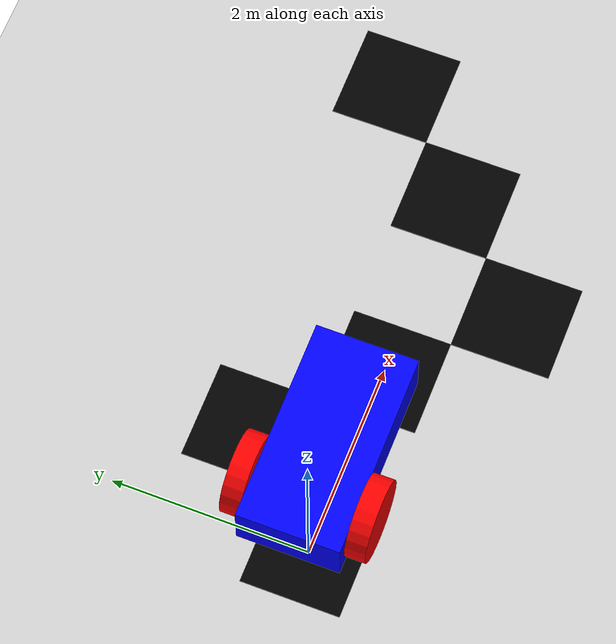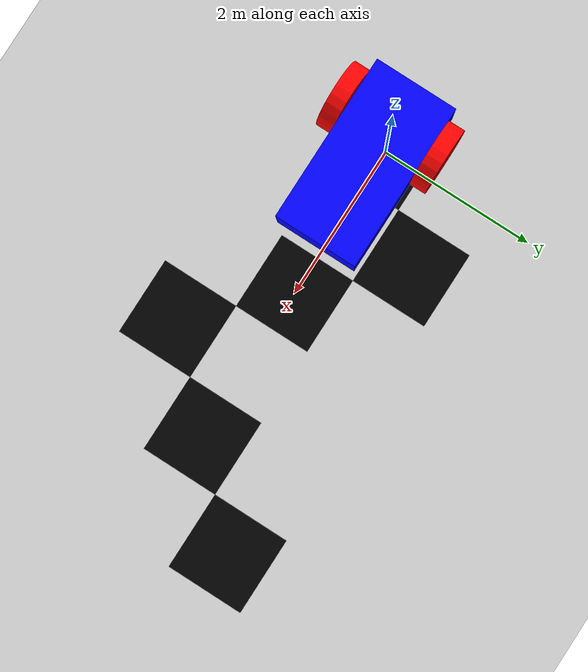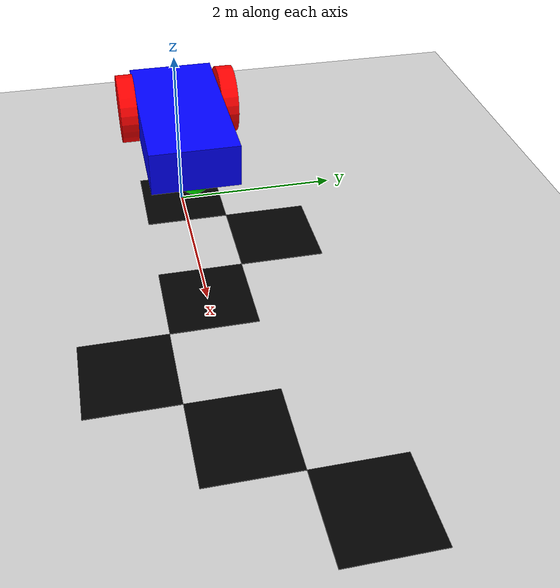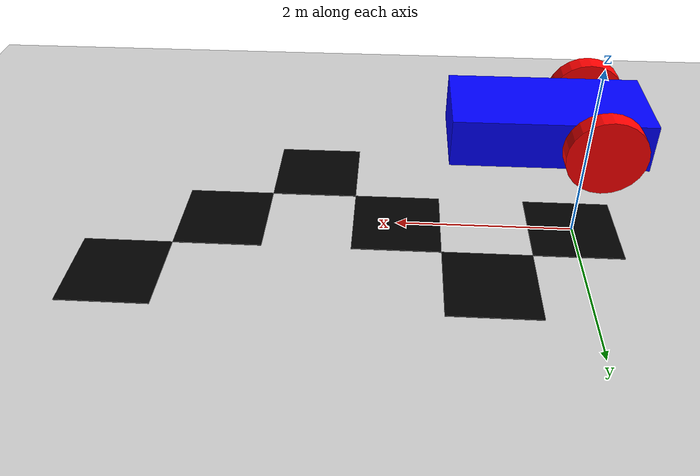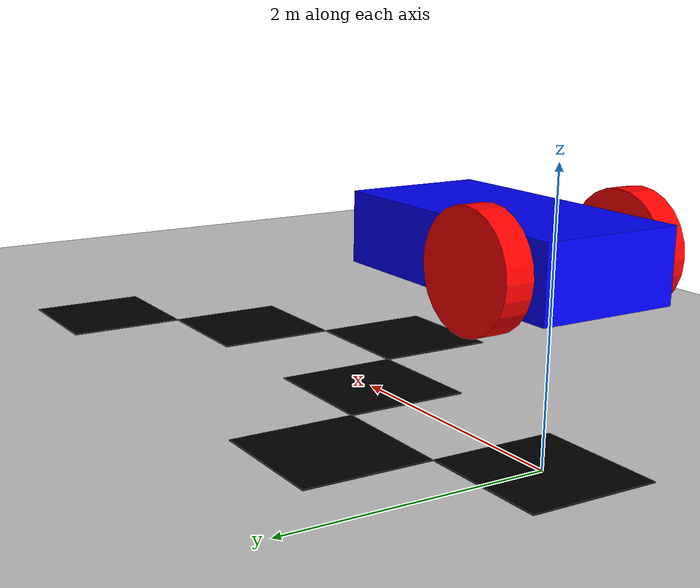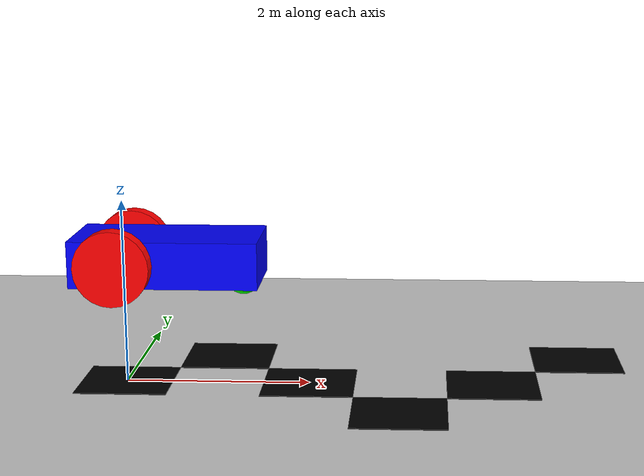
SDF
<?xml version="1.0" ?>
<sdf version="1.8">
  <world name="sensor_world">
    <physics name="1ms" type="ignored">
      <max_step_size>0.001</max_step_size>
      <real_time_factor>1.0</real_time_factor>
    </physics>
    <plugin filename="ignition-gazebo-physics-system" name="ignition::gazebo::systems::Physics">
    </plugin>
    <plugin filename="ignition-gazebo-user-commands-system" name="ignition::gazebo::systems::UserCommands">
    </plugin>
    <plugin filename="ignition-gazebo-scene-broadcaster-system" name="ignition::gazebo::systems::SceneBroadcaster">
    </plugin>
    <plugin filename="ignition-gazebo-imu-system" name="ignition::gazebo::systems::Imu">
    </plugin>
    <plugin filename="ignition-gazebo-sensors-system" name="ignition::gazebo::systems::Sensors">
      <render_engine>ogre2</render_engine>
    </plugin>
    <plugin filename="ignition-gazebo-contact-system" name="ignition::gazebo::systems::Contact">
    </plugin>

    <light type="directional" name="sun">
      <cast_shadows>true</cast_shadows>
      <pose>0 0 10 0 0 0</pose>
      <diffuse>0.8 0.8 0.8 1</diffuse>
      <specular>0.2 0.2 0.2 1</specular>
      <attenuation>
        <range>1000</range>
        <constant>0.9</constant>
        <linear>0.01</linear>
        <quadratic>0.001</quadratic>
      </attenuation>
      <direction>-0.5 0.1 -0.9</direction>
    </light>

    <model name="ground_plane">
      <static>true</static>
      <link name="link">
        <collision name="collision">
          <geometry>
            <plane>
              <normal>0 0 1</normal>
            </plane>
          </geometry>
        </collision>
        <visual name="visual">
          <geometry>
            <plane>
              <normal>0 0 1</normal>
              <size>100 100</size>
            </plane>
          </geometry>
          <material>
            <ambient>0.8 0.8 0.8 1</ambient>
            <diffuse>0.8 0.8 0.8 1</diffuse>
            <specular>0.8 0.8 0.8 1</specular>
          </material>
        </visual>
      </link>
    </model>

    <model name='vehicle_blue' canonical_link='chassis'>
      <pose relative_to='world'>0 0 1 0 0 0</pose>

      <frame name="lidar_frame" attached_to='chassis'>
        <pose>0.8 0 0.5 0 0 0</pose>
      </frame>

      <link name='chassis'>
        <pose relative_to='__model__'>0.5 0 0.4 0 0 0</pose>
        <inertial>
          <mass>1.14395</mass>
          <inertia>
            <ixx>0.126164</ixx>
            <ixy>0</ixy>
            <ixz>0</ixz>
            <iyy>0.416519</iyy>
            <iyz>0</iyz>
            <izz>0.481014</izz>
          </inertia>
        </inertial>
        <visual name='visual'>
          <geometry>
            <box>
              <size>2.0 1.0 0.5</size>
            </box>
          </geometry>
          <material>
            <ambient>0.0 0.0 1.0 1</ambient>
            <diffuse>0.0 0.0 1.0 1</diffuse>
            <specular>0.0 0.0 1.0 1</specular>
          </material>
        </visual>
        <collision name='collision'>
          <geometry>
            <box>
              <size>2.0 1.0 0.5</size>
            </box>
          </geometry>
        </collision>
        <sensor name="camera" type="camera">
          <pose>0 0 0.1 0 0 0</pose>
          <camera>
            <horizontal_fov>1.047</horizontal_fov>
            <image>
              <width>640</width>
              <height>480</height>
            </image>
            <clip>
              <near>0.1</near>
              <far>100</far>
            </clip>
          </camera>
          <always_on>true</always_on>
          <update_rate>30</update_rate>
          <visualize>true</visualize>
          <topic>/camera/image_raw</topic>
        </sensor>
      </link>
      <link name='left_wheel'>
        <pose relative_to="chassis">-0.5 0.6 0 -1.5707 0 0</pose>
        <inertial>
          <mass>2</mass>
          <inertia>
            <ixx>0.145833</ixx>
            <ixy>0</ixy>
            <ixz>0</ixz>
            <iyy>0.145833</iyy>
            <iyz>0</iyz>
            <izz>0.125</izz>
          </inertia>
        </inertial>
        <visual name='visual'>
          <geometry>
            <cylinder>
              <radius>0.4</radius>
              <length>0.2</length>
            </cylinder>
          </geometry>
          <material>
            <ambient>1.0 0.0 0.0 1</ambient>
            <diffuse>1.0 0.0 0.0 1</diffuse>
            <specular>1.0 0.0 0.0 1</specular>
          </material>
        </visual>
        <collision name='collision'>
          <geometry>
            <cylinder>
              <radius>0.4</radius>
              <length>0.2</length>
            </cylinder>
          </geometry>
        </collision>
      </link>

      <link name='right_wheel'>
        <pose relative_to="chassis">-0.5 -0.6 0 -1.5707 0 0</pose>
        <inertial>
          <mass>1</mass>
          <inertia>
            <ixx>0.145833</ixx>
            <ixy>0</ixy>
            <ixz>0</ixz>
            <iyy>0.145833</iyy>
            <iyz>0</iyz>
            <izz>0.125</izz>
          </inertia>
        </inertial>
        <visual name='visual'>
          <geometry>
            <cylinder>
              <radius>0.4</radius>
              <length>0.2</length>
            </cylinder>
          </geometry>
          <material>
            <ambient>1.0 0.0 0.0 1</ambient>
            <diffuse>1.0 0.0 0.0 1</diffuse>
            <specular>1.0 0.0 0.0 1</specular>
          </material>
        </visual>
        <collision name='collision'>
          <geometry>
            <cylinder>
              <radius>0.4</radius>
              <length>0.2</length>
            </cylinder>
          </geometry>
        </collision>
      </link>

      <frame name="caster_frame" attached_to='chassis'>
        <pose>0.8 0 -0.2 0 0 0</pose>
      </frame>

      <link name='caster'>
        <pose relative_to='caster_frame'/>
        <inertial>
          <mass>1</mass>
          <inertia>
            <ixx>0.1</ixx>
            <ixy>0</ixy>
            <ixz>0</ixz>
            <iyy>0.1</iyy>
            <iyz>0</iyz>
            <izz>0.1</izz>
          </inertia>
        </inertial>
        <visual name='visual'>
          <geometry>
            <sphere>
              <radius>0.2</radius>
            </sphere>
          </geometry>
          <material>
            <ambient>0.0 1 0.0 1</ambient>
            <diffuse>0.0 1 0.0 1</diffuse>
            <specular>0.0 1 0.0 1</specular>
          </material>
        </visual>
        <collision name='collision'>
          <geometry>
            <sphere>
              <radius>0.2</radius>
            </sphere>
          </geometry>
        </collision>
      </link>

      <joint name='left_wheel_joint' type='revolute'>
        <pose relative_to='left_wheel'/>
        <parent>chassis</parent>
        <child>left_wheel</child>
        <axis>
          <xyz expressed_in='__model__'>0 1 0</xyz>
          <limit>
            <lower>-1.79769e+308</lower>
            <upper>1.79769e+308</upper>
          </limit>
        </axis>
      </joint>

      <joint name='right_wheel_joint' type='revolute'>
        <pose relative_to='right_wheel'/>
        <parent>chassis</parent>
        <child>right_wheel</child>
        <axis>
          <xyz expressed_in='__model__'>0 1 0</xyz>
          <limit>
            <lower>-1.79769e+308</lower>
            <upper>1.79769e+308</upper>
          </limit>
        </axis>
      </joint>

      <joint name='caster_wheel' type='ball'>
        <parent>chassis</parent>
        <child>caster</child>
      </joint>

      <plugin filename="ignition-gazebo-diff-drive-system" name="ignition::gazebo::systems::DiffDrive">
        <left_joint>left_wheel_joint</left_joint>
        <right_joint>right_wheel_joint</right_joint>
        <wheel_separation>1.2</wheel_separation>
        <wheel_radius>0.4</wheel_radius>
        <odom_publish_frequency>1</odom_publish_frequency>
        <topic>cmd_vel</topic>
      </plugin>
    </model>

    <!-- Zigzag Line -->
    <model name="zigzag_line">
      <static>true</static>
      <link name="link">
        <visual name="visual">
          <geometry>
            <box>
              <size>1 1 0.01</size>
            </box>
          </geometry>
          <material>
            <ambient>0 0 0 1</ambient>
            <diffuse>0 0 0 1</diffuse>
            <specular>0 0 0 1</specular>
          </material>
        </visual>
      </link>
      <pose>0 0 0 0 0 0</pose>
    </model>

    <model name="zigzag_line_segment_1">
      <static>true</static>
      <link name="link">
        <visual name="visual">
          <geometry>
            <box>
              <size>1 1 0.01</size>
            </box>
          </geometry>
          <material>
            <ambient>0 0 0 1</ambient>
            <diffuse>0 0 0 1</diffuse>
            <specular>0 0 0 1</specular>
          </material>
        </visual>
      </link>
      <pose>1 1 0 0 0 0</pose>
    </model>

    <model name="zigzag_line_segment_2">
      <static>true</static>
      <link name="link">
        <visual name="visual">
          <geometry>
            <box>
              <size>1 1 0.01</size>
            </box>
          </geometry>
          <material>
            <ambient>0 0 0 1</ambient>
            <diffuse>0 0 0 1</diffuse>
            <specular>0 0 0 1</specular>
          </material>
        </visual>
      </link>
      <pose>2 0 0 0 0 0</pose>
    </model>

    <model name="zigzag_line_segment_3">
      <static>true</static>
      <link name="link">
        <visual name="visual">
          <geometry>
            <box>
              <size>1 1 0.01</size>
            </box>
          </geometry>
          <material>
            <ambient>0 0 0 1</ambient>
            <diffuse>0 0 0 1</diffuse>
            <specular>0 0 0 1</specular>
          </material>
        </visual>
      </link>
      <pose>3 -1 0 0 0 0</pose>
    </model>

    <model name="zigzag_line_segment_4">
      <static>true</static>
      <link name="link">
        <visual name="visual">
          <geometry>
            <box>
              <size>1 1 0.01</size>
            </box>
          </geometry>
          <material>
            <ambient>0 0 0 1</ambient>
            <diffuse>0 0 0 1</diffuse>
            <specular>0 0 0 1</specular>
          </material>
        </visual>
      </link>
      <pose>4 0 0 0 0 0</pose>
    </model>

    <model name="zigzag_line_segment_5">
      <static>true</static>
      <link name="link">
        <visual name="visual">
          <geometry>
            <box>
              <size>1 1 0.01</size>
            </box>
          </geometry>
          <material>
            <ambient>0 0 0 1</ambient>
            <diffuse>0 0 0 1</diffuse>
            <specular>0 0 0 1</specular>
          </material>
        </visual>
      </link>
      <pose>5 1 0 0 0 0</pose>
    </model>
  </world>
</sdf>
